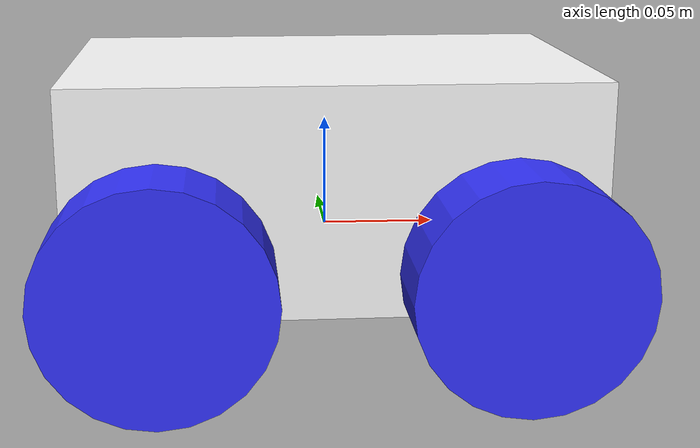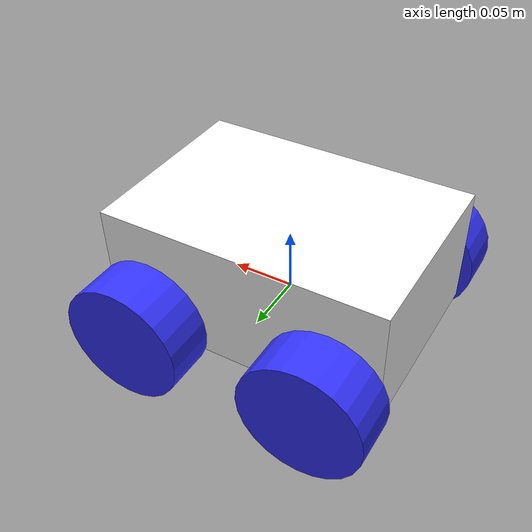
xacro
<?xml version="1.0"?>
<robot xmlns:xacro="http://www.ros.org/wiki/xacro">

    <xacro:include filename="inertial_macros.xacro" />

    <xacro:property name="chassis_length" value="0.225"/>
    <xacro:property name="chassis_width" value="0.153"/>
    <xacro:property name="chassis_height" value="0.0975"/>
    <xacro:property name="chassis_mass" value="4.0"/>
    <xacro:property name="wheel_radius" value="0.048"/>
    <xacro:property name="wheel_thickness" value="0.04"/>
    <xacro:property name="wheel_mass" value="0.05"/>
    <xacro:property name="wheel_offset_x" value="0.073"/>
    <xacro:property name="wheel_offset_y" value="0.1"/>
    <xacro:property name="wheel_offset_z" value="0.02"/>
    <xacro:property name="caster_wheel_radius" value="0.02"/>
    <xacro:property name="caster_wheel_mass" value="0.02"/>
    <xacro:property name="caster_wheel_offset_x" value="0.073"/>
    <xacro:property name="caster_wheel_offset_z" value="${-wheel_radius + caster_wheel_radius}"/>

    <material name="white">
        <color rgba="1 1 1 1"/>
    </material>

    <material name="orange">
        <color rgba="1 0.3 0.1 1"/>
    </material>

    <material name="blue">
        <color rgba="0.2 0.2 1 1"/>
    </material>

    <material name="black">
        <color rgba="0 0 0 1"/>
    </material>

    <material name="red">
        <color rgba="1 0 0 1"/>
    </material>

    <!-- BASE LINK -->

    <link name="base_link">

    </link>

    <!-- BASE_FOOTPRINT LINK -->

    <joint name="base_footprint_joint" type="fixed">
        <parent link="base_link"/>
        <child link="base_footprint"/>
        <origin xyz="0 0 -0.048" rpy="0 0 0"/>
    </joint>

    <link name="base_footprint">
    </link>

    <!-- CHASSIS LINK -->

    <joint name="chassis_joint" type="fixed">
        <parent link="base_link"/>
        <child link="chassis"/>
        <origin xyz="0 0 -0.02"/>
    </joint>

    <link name="chassis">
        <!-- chassis visual -->
        <visual>
            <origin xyz="0 0 ${chassis_height/2}"/>
            <geometry>
                <box size="${chassis_length} ${chassis_width} ${chassis_height}"/>
            </geometry>
            <material name="white"/>
        </visual>
        <!-- chassis interact -->
        <collision>
            <origin xyz="0 0 ${chassis_height/2}"/>
            <geometry>
                <box size="${chassis_length} ${chassis_width} ${chassis_height}"/>
            </geometry>
        </collision>
        <!-- chassis phisical -->
        <xacro:inertial_box mass="0.5" x="${chassis_length}" y="${chassis_width}" z="${chassis_height}">
            <origin xyz="0 0 ${chassis_height/2}" rpy="0 0 0"/>
        </xacro:inertial_box>
    </link>

    <gazebo reference="chassis">
        <material>Gazebo/White</material>
    </gazebo>

    <!-- REAR LEFT WHEEL LINK -->

    <joint name="rear_left_wheel_joint" type="continuous">
        <parent link="base_link"/>
        <child link="rear_left_wheel"/>
        <origin xyz="${-wheel_offset_x} ${wheel_offset_y} 0" rpy="-${pi/2} 0 0"/>
        <axis xyz="0 0 1"/>
    </joint>

    <link name="rear_left_wheel">
        <visual>
            <geometry>
                <cylinder radius="${wheel_radius}" length="${wheel_thickness}"/>
            </geometry>
            <material name="blue"/>
        </visual>
        <collision>
            <geometry>
                <sphere radius="${wheel_radius}"/>
            </geometry>
        </collision>
        <xacro:inertial_cylinder mass="${wheel_mass}" length="${wheel_thickness}" radius="${wheel_radius}">
            <origin xyz="0 0 0" rpy="0 0 0"/>
        </xacro:inertial_cylinder>
    </link>

    <gazebo reference="rear_left_wheel">
        <material>Gazebo/Blue</material>
    </gazebo>

    <!-- FRONT LEFT WHEEL LINK -->

    <joint name="front_left_wheel_joint" type="continuous">
        <parent link="base_link"/>
        <child link="front_left_wheel"/>
        <origin xyz="${wheel_offset_x} ${wheel_offset_y} 0" rpy="-${pi/2} 0 0"/>
        <axis xyz="0 0 1"/>
    </joint>

    <link name="front_left_wheel">
        <visual>
            <geometry>
                <cylinder radius="${wheel_radius}" length="${wheel_thickness}"/>
            </geometry>
            <material name="blue"/>
        </visual>
        <collision>
            <geometry>
                <sphere radius="${wheel_radius}"/>
            </geometry>
        </collision>
        <xacro:inertial_cylinder mass="${wheel_mass}" length="${wheel_thickness}" radius="${wheel_radius}">
            <origin xyz="0 0 0" rpy="0 0 0"/>
        </xacro:inertial_cylinder>
    </link>

    <gazebo reference="front_left_wheel">
        <material>Gazebo/Blue</material>
    </gazebo>

    <!-- REAR RIGHT WHEEL LINK -->

    <joint name="rear_right_wheel_joint" type="continuous">
        <parent link="base_link"/>
        <child link="rear_right_wheel"/>
        <origin xyz="${-wheel_offset_x} ${-wheel_offset_y} 0" rpy="${pi/2} 0 0"/>
        <axis xyz="0 0 -1"/>
    </joint>

    <link name="rear_right_wheel">
        <visual>
            <geometry>
                <cylinder radius="${wheel_radius}" length="${wheel_thickness}"/>
            </geometry>
            <material name="blue"/>
        </visual>
        <collision>
            <geometry>
                <sphere radius="${wheel_radius}"/>
            </geometry>
        </collision>
        <xacro:inertial_cylinder mass="${wheel_mass}" length="${wheel_thickness}" radius="${wheel_radius}">
            <origin xyz="0 0 0" rpy="0 0 0"/>
        </xacro:inertial_cylinder>
    </link>

    <gazebo reference="rear_right_wheel">
        <material>Gazebo/Blue</material>
    </gazebo>

    <!-- FRONT RIGHT WHEEL LINK -->

    <joint name="front_right_wheel_joint" type="continuous">
        <parent link="base_link"/>
        <child link="front_right_wheel"/>
        <origin xyz="${wheel_offset_x} ${-wheel_offset_y} 0" rpy="${pi/2} 0 0"/>
        <axis xyz="0 0 -1"/>
    </joint>

    <link name="front_right_wheel">
        <visual>
            <geometry>
                <cylinder radius="${wheel_radius}" length="${wheel_thickness}"/>
            </geometry>
            <material name="blue"/>
        </visual>
        <collision>
            <geometry>
                <sphere radius="${wheel_radius}"/>
            </geometry>
        </collision>
        <xacro:inertial_cylinder mass="${wheel_mass}" length="${wheel_thickness}" radius="${wheel_radius}">
            <origin xyz="0 0 0" rpy="0 0 0"/>
        </xacro:inertial_cylinder>
    </link>

    <gazebo reference="front_right_wheel">
        <material>Gazebo/Blue</material>
    </gazebo>

    <!-- CASTER WHEEL LINK -->

    <joint name="caster_wheel_joint" type="fixed">
        <parent link="base_link"/>
        <child link="caster_wheel"/>
        <origin xyz="${caster_wheel_offset_x} 0 ${caster_wheel_offset_z}"/>
    </joint>

    <link name="caster_wheel">
        <visual>
            <geometry>
                <sphere radius="${caster_wheel_radius}"/>1
            </geometry>
            <material name="blue"/>
        </visual>
        <collision>
            <geometry>
                <sphere radius="${caster_wheel_radius}"/>
            </geometry>
        </collision>
        <xacro:inertial_sphere mass="${caster_wheel_mass}" radius="${caster_wheel_radius}">
            <origin xyz="0 0 0" rpy="0 0 0"/>
        </xacro:inertial_sphere>
    </link>

    <gazebo reference="caster_wheel">
        <material>Gazebo/Blue</material>
        <mu1 value="0.001"/>
        <mu2 value="0.001"/>
    </gazebo>

</robot>

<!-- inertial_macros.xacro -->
<robot xmlns:xacro="http://www.ros.org/wiki/xacro" >

    <!-- Specify some standard inertial calculations https://en.wikipedia.org/wiki/List_of_moments_of_inertia -->
    <!-- These make use of xacro's mathematical functionality -->

    <xacro:macro name="inertial_sphere" params="mass radius *origin">
        <inertial>
            <xacro:insert_block name="origin"/>
            <mass value="${mass}" />
            <inertia ixx="${(2/5) * mass * (radius*radius)}" ixy="0.0" ixz="0.0"
                    iyy="${(2/5) * mass * (radius*radius)}" iyz="0.0"
                    izz="${(2/5) * mass * (radius*radius)}" />
        </inertial>
    </xacro:macro>

    <xacro:macro name="inertial_box" params="mass x y z *origin">
        <inertial>
            <xacro:insert_block name="origin"/>
            <mass value="${mass}" />
            <inertia ixx="${(1/12) * mass * (y*y+z*z)}" ixy="0.0" ixz="0.0"
                    iyy="${(1/12) * mass * (x*x+z*z)}" iyz="0.0"
                    izz="${(1/12) * mass * (x*x+y*y)}" />
        </inertial>
    </xacro:macro>

    <xacro:macro name="inertial_cylinder" params="mass length radius *origin">
        <inertial>
            <xacro:insert_block name="origin"/>
            <mass value="${mass}" />
            <inertia ixx="${(1/12) * mass * (3*radius*radius + length*length)}" ixy="0.0" ixz="0.0"
                    iyy="${(1/12) * mass * (radius*radius + length*length)}" iyz="0.0"
                    izz="${(1/12) * mass * (radius*radius)}" />
        </inertial>
    </xacro:macro>

</robot>
